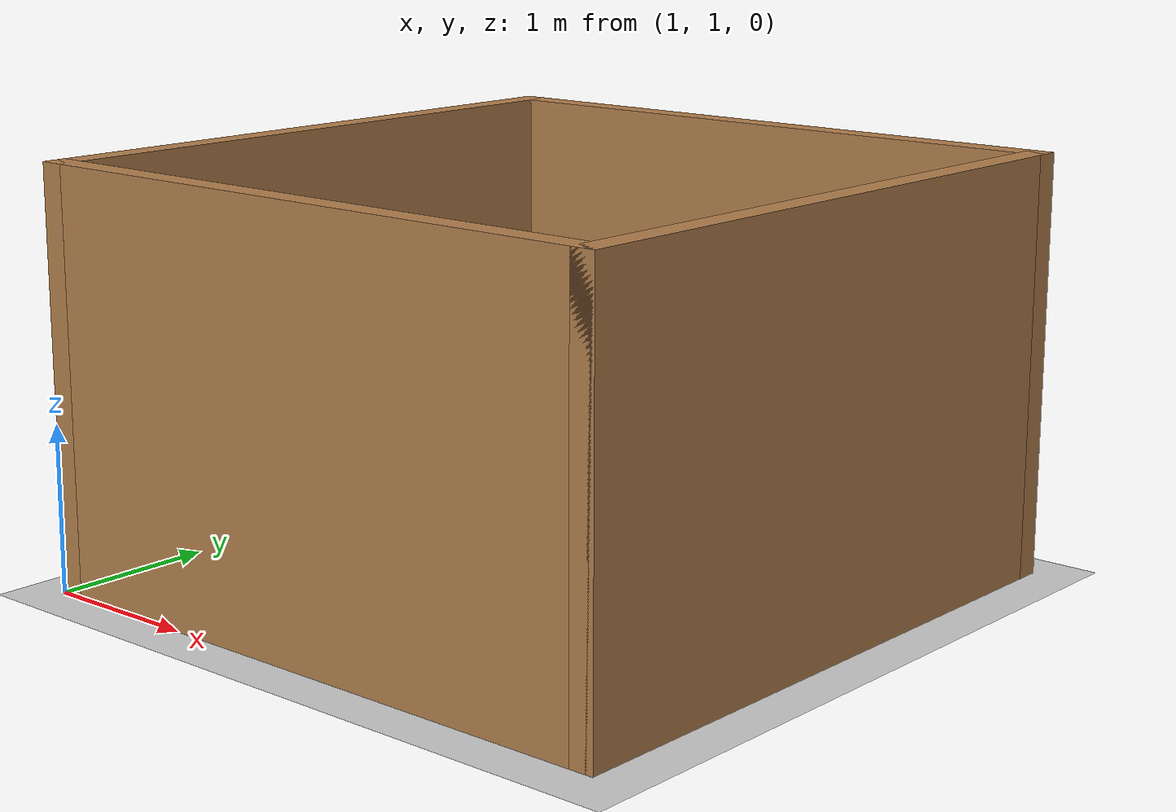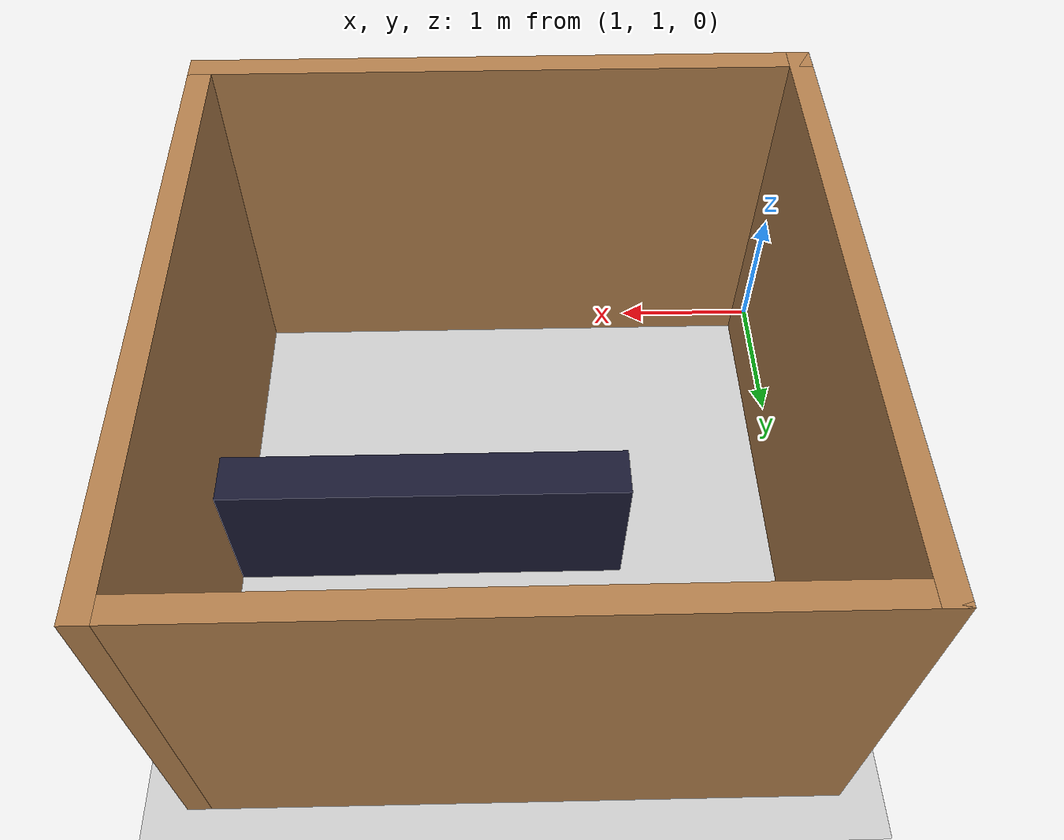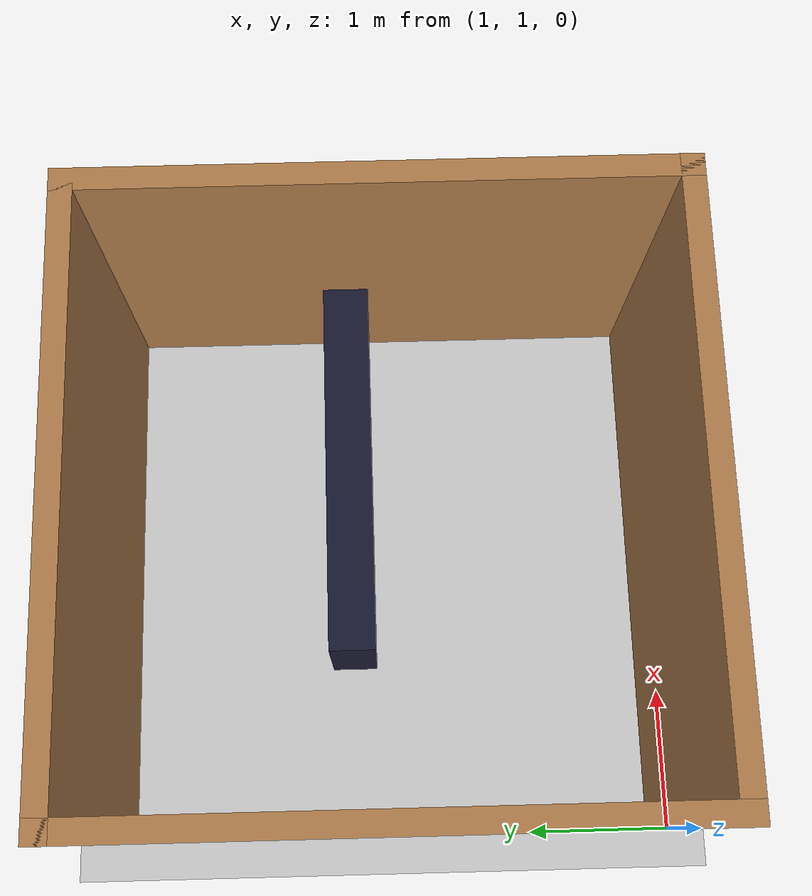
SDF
<sdf version="1.6">
 <world name="default">
  <light name="sun" type="directional">
   <pose>0 0 10 0 -0 0</pose>
   <diffuse>0.8 0.8 0.8 1</diffuse>
   <specular>0.1 0.1 0.1 1</specular>
   <attenuation>
    <range>1000</range>
    <constant>0.9</constant>
    <linear>0.01</linear>
    <quadratic>0.001</quadratic>
   </attenuation>
   <direction>-0.5 0.5 -1</direction>
  </light>
  <model name="ground_plane">
   <static>1</static>
   <link name="link">
    <collision name="collision">
     <geometry><plane><normal>0 0 1</normal><size>100 100</size></plane></geometry>
     <surface><friction><ode><mu>100</mu><mu2>50</mu2></ode></friction></surface>
    </collision>
    <visual name="visual">
     <cast_shadows>0</cast_shadows>
     <geometry><plane><normal>0 0 1</normal><size>100 100</size></plane></geometry>
     <material>
      <script><uri>file://media/materials/scripts/gazebo.material</uri><name>Gazebo/Grey</name></script>
     </material>
    </visual>
   </link>
  </model>
  <gravity>0 0 -9.8</gravity>
  <magnetic_field>6e-06 2.3e-05 -4.2e-05</magnetic_field>
  <atmosphere type="adiabatic"/>
  <physics name="default_physics" default="0" type="ode">
   <max_step_size>0.001</max_step_size>
   <real_time_factor>1</real_time_factor>
   <real_time_update_rate>1000</real_time_update_rate>
  </physics>
  <scene><ambient>0.4 0.4 0.4 1</ambient><background>0.7 0.7 0.7 1</background><shadows>1</shadows></scene>
  <spherical_coordinates>
   <surface_model>EARTH_WGS84</surface_model>
   <latitude_deg>0</latitude_deg>
   <longitude_deg>0</longitude_deg>
   <elevation>0</elevation>
   <heading_deg>0</heading_deg>
  </spherical_coordinates>
  <model name="unit_box_0_clone">
   <static>1</static>
   <pose>3.56677 3.24233 0.5 0 0 -0.000329</pose>
   <link name="link">
    <inertial>
     <mass>1</mass>
     <inertia>
      <ixx>0.166667</ixx>
      <ixy>0</ixy>
      <ixz>0</ixz>
      <iyy>0.166667</iyy>
      <iyz>0</iyz>
      <izz>0.166667</izz>
     </inertia>
    </inertial>
    <collision name="collision"><geometry><box><size>2.68794 0.32059 1</size></box></geometry></collision>
    <visual name="visual">
     <geometry><box><size>2.68794 0.32059 1</size></box></geometry>
     <material>
      <ambient>0.1 0.1 0.1 1</ambient>
      <diffuse>0.1 0.1 0.2 1</diffuse>
      <specular>0 0 0 0</specular>
      <emissive>0 0 0 1</emissive>
     </material>
    </visual>
   </link>
  </model>
  <model name="4x4Box">
   <pose>3 3 0 0 -0 0</pose>
   <link name="Wall_0">
    <collision name="Wall_0_Collision">
     <geometry><box><size>4 0.15 2.5</size></box></geometry>
     <pose>0 0 1.25 0 -0 0</pose>
    </collision>
    <visual name="Wall_0_Visual">
     <pose>0 0 1.25 0 -0 0</pose>
     <geometry><box><size>4 0.15 2.5</size></box></geometry>
     <material>
      <script><uri>file://media/materials/scripts/gazebo.material</uri><name>Gazebo/Wood</name></script>
      <ambient>1 1 1 1</ambient>
     </material>
    </visual>
    <pose>0 -1.925 0 0 -0 0</pose>
   </link>
   <link name="Wall_4">
    <collision name="Wall_4_Collision">
     <geometry><box><size>4 0.15 2.5</size></box></geometry>
     <pose>0 0 1.25 0 -0 0</pose>
    </collision>
    <visual name="Wall_4_Visual">
     <pose>0 0 1.25 0 -0 0</pose>
     <geometry><box><size>4 0.15 2.5</size></box></geometry>
     <material>
      <script><uri>file://media/materials/scripts/gazebo.material</uri><name>Gazebo/Wood</name></script>
      <ambient>1 1 1 1</ambient>
     </material>
    </visual>
    <pose>1.925 0 0 0 -0 1.5708</pose>
   </link>
   <link name="Wall_5">
    <collision name="Wall_5_Collision">
     <geometry><box><size>4 0.15 2.5</size></box></geometry>
     <pose>0 0 1.25 0 -0 0</pose>
    </collision>
    <visual name="Wall_5_Visual">
     <pose>0 0 1.25 0 -0 0</pose>
     <geometry><box><size>4 0.15 2.5</size></box></geometry>
     <material>
      <script><uri>file://media/materials/scripts/gazebo.material</uri><name>Gazebo/Wood</name></script>
      <ambient>1 1 1 1</ambient>
     </material>
    </visual>
    <pose>0 1.925 0 0 -0 3.14159</pose>
   </link>
   <link name="Wall_6">
    <collision name="Wall_6_Collision">
     <geometry><box><size>4 0.15 2.5</size></box></geometry>
     <pose>0 0 1.25 0 -0 0</pose>
    </collision>
    <visual name="Wall_6_Visual">
     <pose>0 0 1.25 0 -0 0</pose>
     <geometry><box><size>4 0.15 2.5</size></box></geometry>
     <material>
      <script><uri>file://media/materials/scripts/gazebo.material</uri><name>Gazebo/Wood</name></script>
      <ambient>1 1 1 1</ambient>
     </material>
    </visual>
    <pose>-1.925 0 0 0 0 -1.5708</pose>
   </link>
   <static>1</static>
  </model>
 </world>
</sdf>
